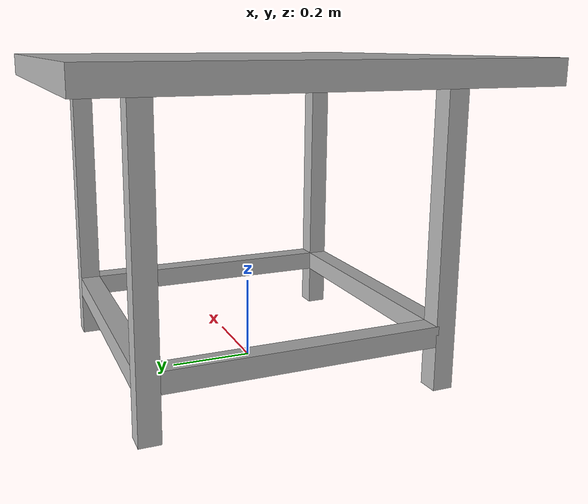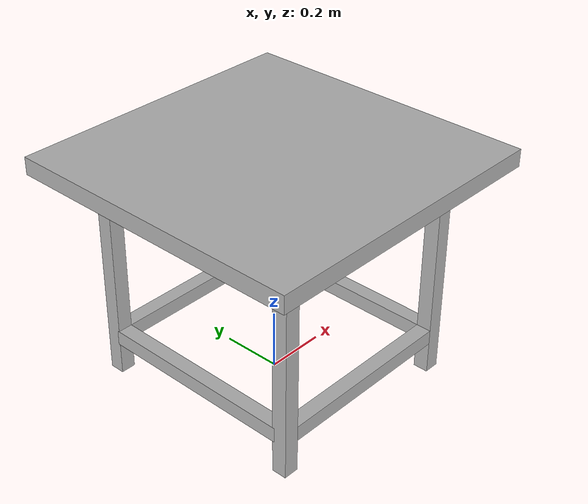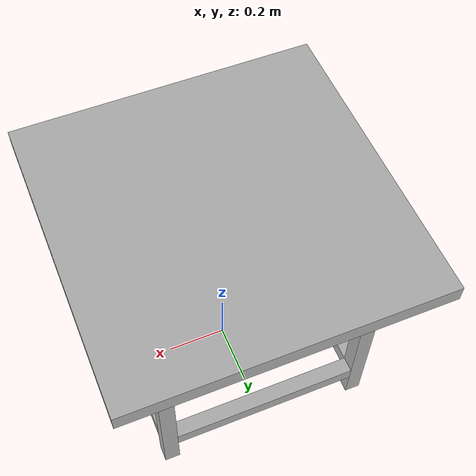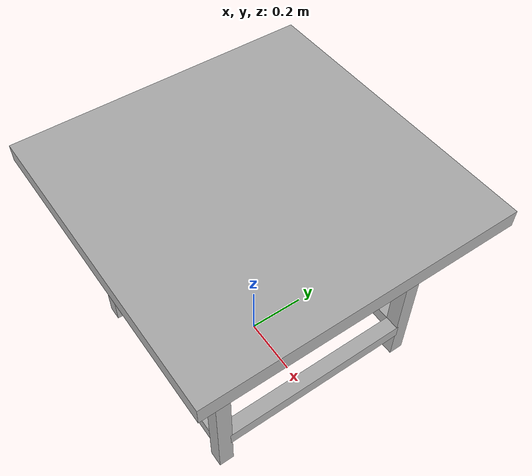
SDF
<?xml version="1.0"?>
<sdf version="1.7">
  <model name="extra_heavy_duty_table_surface_only_collision">
    <link name="link">
      <inertial>
        <mass>53.5</mass>
        <inertia>
          <ixx>5.177409</ixx>
          <ixy>0</ixy>
          <ixz>0</ixz>
          <iyy>4.843753753</iyy>
          <iyz>0</iyz>
          <izz>4.843753753</izz>
        </inertia>
      </inertial>
      <kinematic>0</kinematic>
      <visual name="back_right_leg">
        <pose>-0.33 -0.35 0.381 0 0 0</pose>
        <geometry>
          <box>
            <size>0.05 0.05 0.762</size>
          </box>
        </geometry>
        <material>
          <ambient>0.3 0.3 0.3 1</ambient>
          <diffuse>0.7 0.7 0.7 1</diffuse>
          <specular>0.01 0.01 0.01 1</specular>
          <emissive>0 0 0 1</emissive>
        </material>
      </visual>
      <visual name="front_left_leg">
        <pose>0.33 0.35 0.381 0 0 0</pose>
        <geometry>
          <box>
            <size>0.05 0.05 0.762</size>
          </box>
        </geometry>
        <material>
          <ambient>0.3 0.3 0.3 1</ambient>
          <diffuse>0.7 0.7 0.7 1</diffuse>
          <specular>0.01 0.01 0.01 1</specular>
          <emissive>0 0 0 1</emissive>
        </material>
      </visual>
      <visual name="left_crossbar">
        <pose>0.33 0 0.13335 0 0 0</pose>
        <geometry>
          <box>
            <size>0.05 0.662 0.05</size>
          </box>
        </geometry>
        <material>
          <ambient>0.3 0.3 0.3 1</ambient>
          <diffuse>0.7 0.7 0.7 1</diffuse>
          <specular>0.01 0.01 0.01 1</specular>
          <emissive>0 0 0 1</emissive>
        </material>
      </visual>
      <visual name="right_crossbar">
        <pose>-0.33 0 0.13335 0 0 0</pose>
        <geometry>
          <box>
            <size>0.05 0.662 0.05</size>
          </box>
        </geometry>
        <material>
          <ambient>0.3 0.3 0.3 1</ambient>
          <diffuse>0.7 0.7 0.7 1</diffuse>
          <specular>0.01 0.01 0.01 1</specular>
          <emissive>0 0 0 1</emissive>
        </material>
      </visual>
      <visual name="back_left_leg">
        <pose>-0.33 0.35 0.381 0 0 0</pose>
        <geometry>
          <box>
            <size>0.05 0.05 0.762</size>
          </box>
        </geometry>
        <material>
          <ambient>0.3 0.3 0.3 1</ambient>
          <diffuse>0.7 0.7 0.7 1</diffuse>
          <specular>0.01 0.01 0.01 1</specular>
          <emissive>0 0 0 1</emissive>
        </material>
      </visual>
      <visual name="front_right_leg">
        <pose>0.33 -0.35 0.381 0 0 0</pose>
        <geometry>
          <box>
            <size>0.05 0.05 0.762</size>
          </box>
        </geometry>
        <material>
          <ambient>0.3 0.3 0.3 1</ambient>
          <diffuse>0.7 0.7 0.7 1</diffuse>
          <specular>0.01 0.01 0.01 1</specular>
          <emissive>0 0 0 1</emissive>
        </material>
      </visual>
      <visual name="back_crossbar">
        <pose>0 0.35 0.13335 0 0 0</pose>
        <geometry>
          <box>
            <size>0.6112 0.05 0.05</size>
          </box>
        </geometry>
        <material>
          <ambient>0.3 0.3 0.3 1</ambient>
          <diffuse>0.7 0.7 0.7 1</diffuse>
          <specular>0.01 0.01 0.01 1</specular>
          <emissive>0 0 0 1</emissive>
        </material>
      </visual>
      <visual name="front_crossbar">
        <pose>0 -0.35 0.13335 0 0 0</pose>
        <geometry>
          <box>
            <size>0.6112 0.05 0.05</size>
          </box>
        </geometry>
        <material>
          <ambient>0.3 0.3 0.3 1</ambient>
          <diffuse>0.7 0.7 0.7 1</diffuse>
          <specular>0.01 0.01 0.01 1</specular>
          <emissive>0 0 0 1</emissive>
        </material>
      </visual>
      <visual name="visual1">
        <pose>0 0 0.736 0 0 0</pose>
        <geometry>
          <box>
            <size>1.0 1.0 0.057</size>
          </box>
        </geometry>
        <material>
          <ambient>0.3 0.3 0.3 1</ambient>
          <diffuse>0.7 0.7 0.7 1</diffuse>
          <specular>0.01 0.01 0.01 1</specular>
          <emissive>0 0 0 1</emissive>
        </material>
      </visual>
      <collision name="surface">
        <pose>0 0 0.736 0 0 0</pose>
        <geometry>
          <box>
            <size>1.0 1.0 0.057</size>
          </box>
        </geometry>
        <drake:proximity_properties>
          <drake:compliant_hydroelastic/>
          <drake:hydroelastic_modulus>1.0e7</drake:hydroelastic_modulus>
        </drake:proximity_properties>
      </collision>
    </link>
    <frame name="top_center">
      <!--
      TODO(eric.cousineau): @frame='link' is redundant, but not having it
      causes RBT SDFormat parsing code to segfault. Remove this once RBT is
      removed.
      -->
      <pose relative_to="link">0 0 0.7645 0 0 0</pose>
    </frame>
  </model>
</sdf>
